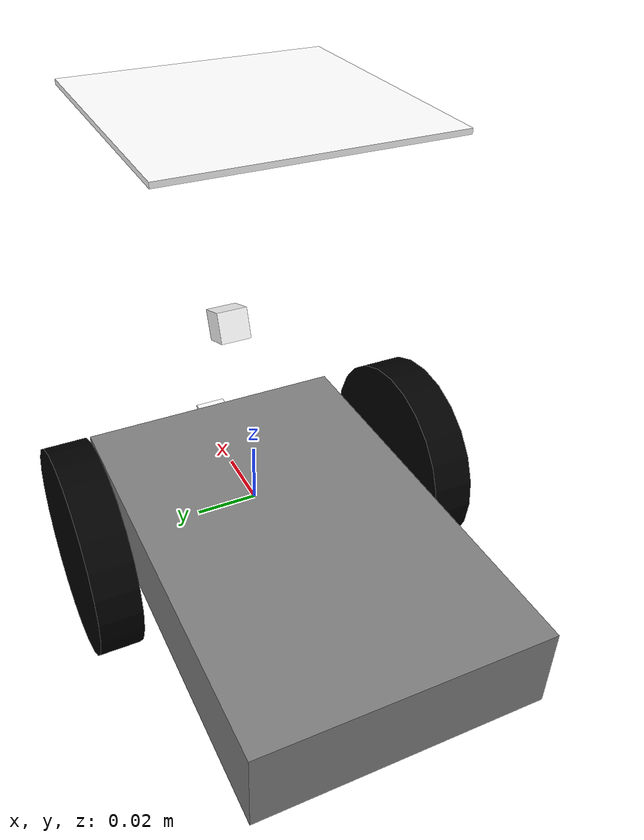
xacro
<?xml version="1.0"?>
<robot xmlns:xacro="http://www.ros.org/wiki/xacro" name="robot">

  <xacro:property name="M_PI" value="3.1415926535897931" />

  <!-- Dimension Macros -->
  <xacro:property name="degrees_45" value="0.785398163"/>
  <xacro:property name="degrees_90" value="1.57079633"/>

  <xacro:property name="track" value="0.1136" />
  <xacro:property name="wheel_diam" value="0.067" />
  <xacro:property name="wheel_width" value="0.0135" />
  <xacro:property name="ball_diam" value="0.0254" />
  <xacro:property name="ball_x" value="-0.08" />
  <xacro:property name="tag_plate_size" value="0.08" />
  <xacro:property name="tag_plate_t" value="0.0015" />
  <xacro:property name="tag_plate_z" value="0.132" />
  <xacro:property name="camera_x" value="0.019" />
  <xacro:property name="camera_z" value="0.057" />
  <xacro:property name="camera_incl" value="20" />
  <xacro:property name="vl53l1x_x" value="0.035" />
  <xacro:property name="vl53l1x_z" value="0.008" />

  <material name="Black">
    <color rgba="0 0 0 1.0"/>
  </material>

  <material name="Gray">
    <color rgba="0.5 0.5 0.5 1.0"/>
  </material>

  <material name="White">
    <color rgba="1 1 1 1.0"/>
  </material>

  <link name="base_link">
    <visual>
      <geometry>
        <box size="0.136 0.09 0.027"/>
      </geometry>
      <origin rpy="0 0 0" xyz="-0.031 0 0"/>
      <material name="Gray"/>
    </visual>
    <visual>
      <geometry>
        <sphere radius="${ball_diam/2}"/>
      </geometry>
      <origin rpy="0 0 0" xyz="${ball_x} 0 ${-((wheel_diam/2)-(ball_diam/2))}"/>
      <!-- Bug? -->
      <material name="White1">
        <color rgba="1 1 1 1"/>
      </material>
    </visual>
  </link>

  <link name="right_wheel">
    <visual>
      <geometry>
        <cylinder length="${wheel_width}" radius="${wheel_diam/2}"/>
      </geometry>
      <origin rpy="${degrees_90} 0 0" xyz="0 0 0"/>
      <material name="Black"/>
    </visual>
  </link>

  <link name="left_wheel">
    <visual>
      <geometry>
        <cylinder length="${wheel_width}" radius="${wheel_diam/2}"/>
      </geometry>
      <origin rpy="${degrees_90} 0 0" xyz="0 0 0"/>
      <material name="Black"/>
    </visual>
  </link>

  <link name="tag_plate">
    <visual>
      <geometry>
        <box size="${tag_plate_size} ${tag_plate_size} ${tag_plate_t}"/>
      </geometry>
      <origin rpy="0 0 0" xyz="0 0 -${tag_plate_t/2}"/>
      <material name="White"/>
    </visual>
  </link>

  <link name="camera">
    <visual>
      <geometry>
        <box size="0.01 0.01 0.01"/>
      </geometry>
      <origin rpy="0 0 0" xyz="0 0 0"/>
      <material name="White"/>
    </visual>
  </link>

  <link name="vl53l1x">
    <visual>
      <geometry>
        <box size="0.01 0.01 0.01"/>
      </geometry>
      <origin rpy="0 0 0" xyz="0 0 0"/>
      <material name="White"/>
    </visual>
  </link>

  <joint name="base_to_right_wheel" type="continuous">
    <axis xyz="0 1 0" />
    <parent link="base_link" />
    <child link="right_wheel" />
    <origin xyz="0 ${-track/2} 0" rpy="0 0 0" />
  </joint>

  <joint name="base_to_left_wheel" type="continuous">
    <axis xyz="0 1 0" />
    <parent link="base_link" />
    <child link="left_wheel" />
    <origin xyz="0 ${track/2} 0" rpy="0 0 0" />
  </joint>

  <joint name="base_to_tag_plate" type="fixed">
    <origin xyz="0 0 ${tag_plate_z}" rpy="0 0 0" />
    <parent link="base_link"/>
    <child link="tag_plate" />
  </joint>

  <joint name="base_to_camera" type="fixed">
    <origin xyz="${camera_x} 0 ${camera_z}" rpy="0 ${camera_incl*M_PI/180} 0" />
    <parent link="base_link"/>
    <child link="camera" />
  </joint>

  <joint name="base_to_vl53l1x" type="fixed">
    <origin xyz="${vl53l1x_x} 0 ${vl53l1x_z}" rpy="0 0 0" />
    <parent link="base_link"/>
    <child link="vl53l1x" />
  </joint>

</robot>
